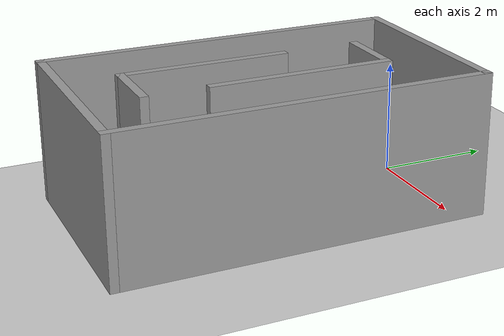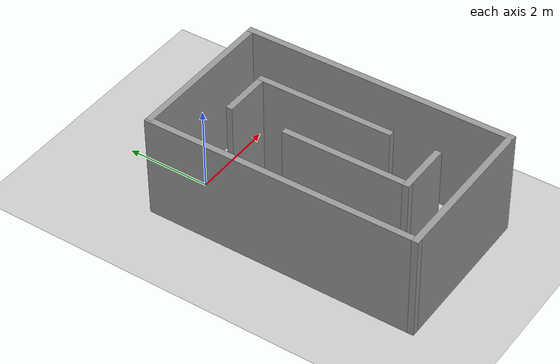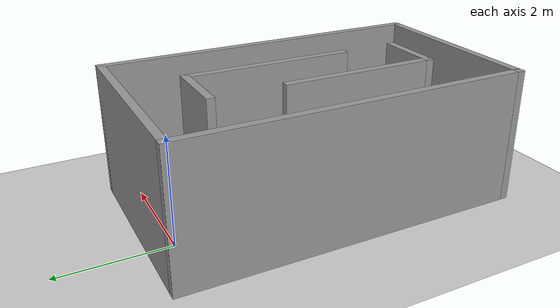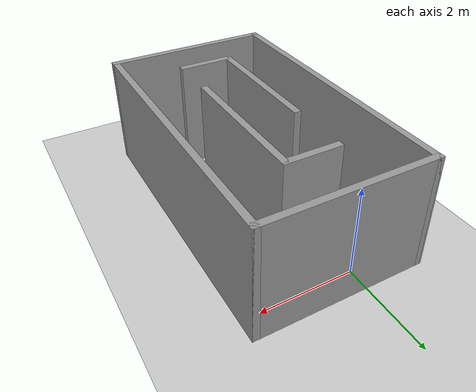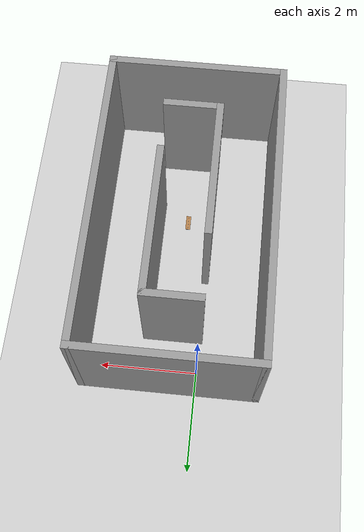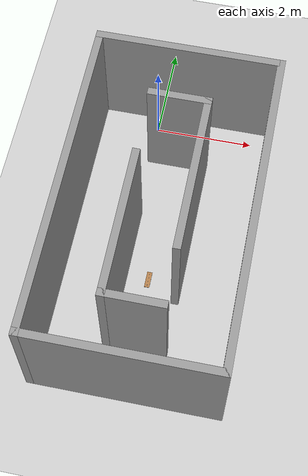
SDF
<sdf version="1.6">
 <world name="default">
  <light name="sun" type="directional">
   <pose>0 0 10 0 -0 0</pose>
   <diffuse>0.8 0.8 0.8 1</diffuse>
   <specular>0.2 0.2 0.2 1</specular>
   <attenuation>
    <range>1000</range>
    <constant>0.9</constant>
    <linear>0.01</linear>
    <quadratic>0.001</quadratic>
   </attenuation>
   <direction>-0.5 0.1 -0.9</direction>
  </light>
  <model name="ground_plane">
   <static>1</static>
   <link name="link">
    <collision name="collision">
     <geometry><plane><normal>0 0 1</normal><size>100 100</size></plane></geometry>
     <surface>
      <contact><collide_bitmask>65535</collide_bitmask></contact>
      <friction><ode><mu>100</mu><mu2>50</mu2></ode></friction>
     </surface>
    </collision>
    <visual name="visual">
     <cast_shadows>0</cast_shadows>
     <geometry><plane><normal>0 0 1</normal><size>100 100</size></plane></geometry>
     <material>
      <script><uri>file://media/materials/scripts/gazebo.material</uri><name>Gazebo/Grey</name></script>
     </material>
    </visual>
   </link>
  </model>
  <gravity>0 0 -9.8</gravity>
  <magnetic_field>6e-06 2.3e-05 -4.2e-05</magnetic_field>
  <atmosphere type="adiabatic"/>
  <physics name="default_physics" default="0" type="ode">
   <max_step_size>0.001</max_step_size>
   <real_time_factor>1</real_time_factor>
   <real_time_update_rate>1000</real_time_update_rate>
  </physics>
  <scene><ambient>0.4 0.4 0.4 1</ambient><background>0.7 0.7 0.7 1</background><shadows>1</shadows></scene>
  <audio><device>default</device></audio>
  <spherical_coordinates>
   <surface_model>EARTH_WGS84</surface_model>
   <latitude_deg>0</latitude_deg>
   <longitude_deg>0</longitude_deg>
   <elevation>0</elevation>
   <heading_deg>0</heading_deg>
  </spherical_coordinates>
  <model name="maze7">
   <pose>0.544486 -2.77608 0 0 -0 0</pose>
   <link name="Wall_10">
    <collision name="Wall_10_Collision">
     <geometry><box><size>1.25 0.15 2.5</size></box></geometry>
     <pose>0 0 1.25 0 -0 0</pose>
    </collision>
    <visual name="Wall_10_Visual">
     <pose>0 0 1.25 0 -0 0</pose>
     <geometry><box><size>1.25 0.15 2.5</size></box></geometry>
     <material>
      <script><uri>file://media/materials/scripts/gazebo.material</uri><name>Gazebo/Grey</name></script>
      <ambient>1 1 1 1</ambient>
     </material>
     <meta><layer>0</layer></meta>
    </visual>
    <pose>0.014374 2.04016 0 0 -0 0</pose>
   </link>
   <link name="Wall_11">
    <collision name="Wall_11_Collision">
     <geometry><box><size>3.25 0.15 2.5</size></box></geometry>
     <pose>0 0 1.25 0 -0 0</pose>
    </collision>
    <visual name="Wall_11_Visual">
     <pose>0 0 1.25 0 -0 0</pose>
     <geometry><box><size>3.25 0.15 2.5</size></box></geometry>
     <material>
      <script><uri>file://media/materials/scripts/gazebo.material</uri><name>Gazebo/Grey</name></script>
      <ambient>1 1 1 1</ambient>
     </material>
     <meta><layer>0</layer></meta>
    </visual>
    <pose>0.564374 0.490158 0 0 -0 -1.5708</pose>
   </link>
   <link name="Wall_13">
    <collision name="Wall_13_Collision">
     <geometry><box><size>1.25 0.15 2.5</size></box></geometry>
     <pose>0 0 1.25 0 -0 0</pose>
    </collision>
    <visual name="Wall_13_Visual">
     <pose>0 0 1.25 0 -0 0</pose>
     <geometry><box><size>1.25 0.15 2.5</size></box></geometry>
     <material>
      <script><uri>file://media/materials/scripts/gazebo.material</uri><name>Gazebo/Grey</name></script>
      <ambient>1 1 1 1</ambient>
     </material>
     <meta><layer>0</layer></meta>
    </visual>
    <pose>0.001513 -2.19274 0 0 -0 3.14159</pose>
   </link>
   <link name="Wall_14">
    <collision name="Wall_14_Collision">
     <geometry><box><size>3 0.15 2.5</size></box></geometry>
     <pose>0 0 1.25 0 -0 0</pose>
    </collision>
    <visual name="Wall_14_Visual">
     <pose>0 0 1.25 0 -0 0</pose>
     <geometry><box><size>3 0.15 2.5</size></box></geometry>
     <material>
      <script><uri>file://media/materials/scripts/gazebo.material</uri><name>Gazebo/Grey</name></script>
      <ambient>1 1 1 1</ambient>
     </material>
     <meta><layer>0</layer></meta>
    </visual>
    <pose>-0.548487 -0.767743 0 0 -0 1.5708</pose>
   </link>
   <link name="Wall_5">
    <collision name="Wall_5_Collision">
     <geometry><box><size>3.75 0.15 2.5</size></box></geometry>
     <pose>0 0 1.25 0 -0 0</pose>
    </collision>
    <visual name="Wall_5_Visual">
     <pose>0 0 1.25 0 -0 0</pose>
     <geometry><box><size>3.75 0.15 2.5</size></box></geometry>
     <material>
      <script><uri>file://media/materials/scripts/gazebo.material</uri><name>Gazebo/Grey</name></script>
      <ambient>1 1 1 1</ambient>
     </material>
     <meta><layer>0</layer></meta>
    </visual>
    <pose>0 3.175 0 0 -0 0</pose>
   </link>
   <link name="Wall_6">
    <collision name="Wall_6_Collision">
     <geometry><box><size>6.5 0.15 2.5</size></box></geometry>
     <pose>0 0 1.25 0 -0 0</pose>
    </collision>
    <visual name="Wall_6_Visual">
     <pose>0 0 1.25 0 -0 0</pose>
     <geometry><box><size>6.5 0.15 2.5</size></box></geometry>
     <material>
      <script><uri>file://media/materials/scripts/gazebo.material</uri><name>Gazebo/Grey</name></script>
      <ambient>1 1 1 1</ambient>
     </material>
     <meta><layer>0</layer></meta>
    </visual>
    <pose>1.8 0 0 0 -0 -1.5708</pose>
   </link>
   <link name="Wall_7">
    <collision name="Wall_7_Collision">
     <geometry><box><size>3.75 0.15 2.5</size></box></geometry>
     <pose>0 0 1.25 0 -0 0</pose>
    </collision>
    <visual name="Wall_7_Visual">
     <pose>0 0 1.25 0 -0 0</pose>
     <geometry><box><size>3.75 0.15 2.5</size></box></geometry>
     <material>
      <script><uri>file://media/materials/scripts/gazebo.material</uri><name>Gazebo/Grey</name></script>
      <ambient>1 1 1 1</ambient>
     </material>
     <meta><layer>0</layer></meta>
    </visual>
    <pose>0 -3.175 0 0 -0 3.14159</pose>
   </link>
   <link name="Wall_8">
    <collision name="Wall_8_Collision">
     <geometry><box><size>6.5 0.15 2.5</size></box></geometry>
     <pose>0 0 1.25 0 -0 0</pose>
    </collision>
    <visual name="Wall_8_Visual">
     <pose>0 0 1.25 0 -0 0</pose>
     <geometry><box><size>6.5 0.15 2.5</size></box></geometry>
     <material>
      <script><uri>file://media/materials/scripts/gazebo.material</uri><name>Gazebo/Grey</name></script>
      <ambient>1 1 1 1</ambient>
     </material>
     <meta><layer>0</layer></meta>
    </visual>
    <pose>-1.8 0 0 0 -0 1.5708</pose>
   </link>
   <static>1</static>
  </model>
  <model name="wooden_board">
   <link name="base">
    <pose>0 0 0.00523 0 -0 0</pose>
    <inertial>
     <mass>0.2765</mass>
     <inertia>
      <ixx>0.0025148</ixx>
      <ixy>0</ixy>
      <ixz>0</ixz>
      <iyy>0.00024037</iyy>
      <iyz>0</iyz>
      <izz>0.00275013</izz>
     </inertia>
    </inertial>
    <collision name="collision">
     <geometry><box><size>0.1016 0.3302 0.01046</size></box></geometry>
     <surface>
      <contact>
       <poissons_ratio>0.347</poissons_ratio>
       <elastic_modulus>8.8e+09</elastic_modulus>
       <ode><kp>100000</kp><kd>100</kd><max_vel>100</max_vel><min_depth>0.001</min_depth></ode>
      </contact>
      <friction>
       <torsional>
        <coefficient>1</coefficient>
        <use_patch_radius>0</use_patch_radius>
        <surface_radius>0.01</surface_radius>
       </torsional>
      </friction>
     </surface>
    </collision>
    <visual name="visual">
     <geometry><box><size>0.1016 0.3302 0.01046</size></box></geometry>
     <material>
      <script><uri>file://media/materials/scripts/gazebo.material</uri><name>Gazebo/Wood</name></script>
     </material>
    </visual>
    <visual name="tee_nut_1">
     <pose>0 -0.116 0 0 -0 0</pose>
     <geometry><cylinder><radius>0.00635</radius><length>0.0105646</length></cylinder></geometry>
     <material>
      <script><uri>file://media/materials/scripts/gazebo.material</uri><name>Gazebo/Grey</name></script>
     </material>
    </visual>
    <visual name="tee_nut_2">
     <pose>0 -0.038 0 0 -0 0</pose>
     <geometry><cylinder><radius>0.00635</radius><length>0.0105646</length></cylinder></geometry>
     <material>
      <script><uri>file://media/materials/scripts/gazebo.material</uri><name>Gazebo/Grey</name></script>
     </material>
    </visual>
    <visual name="tee_nut_3">
     <pose>0 0.038 0 0 -0 0</pose>
     <geometry><cylinder><radius>0.00635</radius><length>0.0105646</length></cylinder></geometry>
     <material>
      <script><uri>file://media/materials/scripts/gazebo.material</uri><name>Gazebo/Grey</name></script>
     </material>
    </visual>
    <visual name="tee_nut_4">
     <pose>0 0.116 0 0 -0 0</pose>
     <geometry><cylinder><radius>0.00635</radius><length>0.0105646</length></cylinder></geometry>
     <material>
      <script><uri>file://media/materials/scripts/gazebo.material</uri><name>Gazebo/Grey</name></script>
     </material>
    </visual>
   </link>
   <pose>0.5 -3.5 -0.001007 0 -0 1e-06</pose>
  </model>
 </world>
</sdf>
